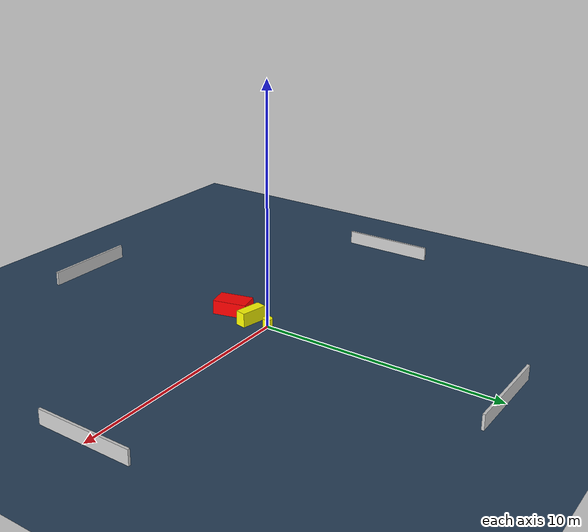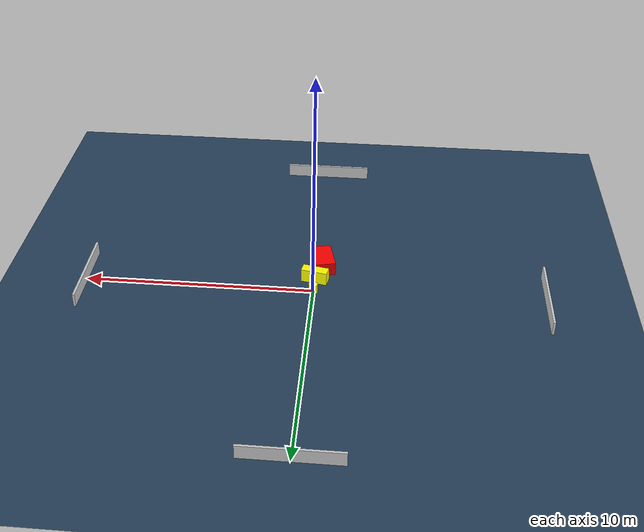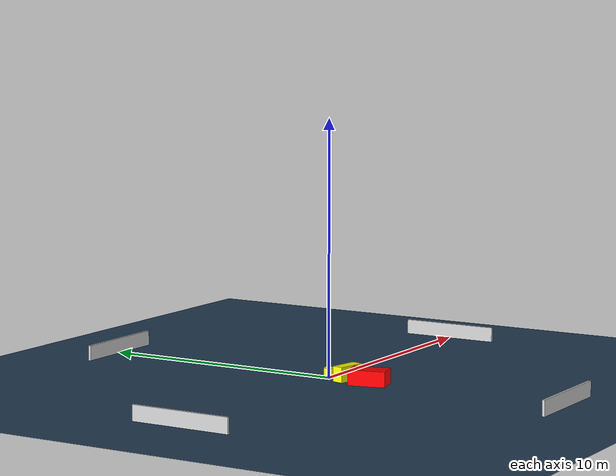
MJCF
<?xml version="1.0" ?>
<mujoco model="generated_environment">
  <option timestep="0.01" integrator="RK4" cone="elliptic"/>
  <default>
    <geom density="1"/>
  </default>
  <asset>
    <texture builtin="gradient" height="3072" name="skybox" rgb1="0.3 0.5 0.7" rgb2="0 0 0" type="skybox" width="512"/>
    <texture builtin="checker" height="300" name="groundplane" rgb1="0.2 0.3 0.4" rgb2="0.1 0.2 0.3" type="2d" width="300"/>
    <material name="groundplane" reflectance="0.2" texrepeat="5 5" texture="groundplane"/>
  </asset>
  <worldbody>
    <light dir="0 0 -1" directional="true" pos="0 0 1.5"/>
    <geom condim="3" friction="0.5 0.005 0.001" material="groundplane" name="floor" pos="0 0 0" size="0 0 0.05" type="plane"/>
    <body name="walls">
      <geom name="wall_1" condim="4" pos="-10.0 0.0 0.3" rgba="0.800000011920929 0.800000011920929 0.800000011920929 1.0" size="0.05 2.0 0.3" type="box"/>
      <geom name="wall_2" condim="4" pos="10.0 0.0 0.3" rgba="0.800000011920929 0.800000011920929 0.800000011920929 1.0" size="0.05 2.0 0.3" type="box"/>
      <geom name="wall_3" condim="4" pos="0.0 -10.0 0.3" rgba="0.800000011920929 0.800000011920929 0.800000011920929 1.0" size="2.0 0.05 0.3" type="box"/>
      <geom name="wall_4" condim="4" pos="0.0 10.0 0.3" rgba="0.800000011920929 0.800000011920929 0.800000011920929 1.0" size="2.0 0.05 0.3" type="box"/>
    </body>
    <body name="robot">
      <joint name="joint_x" type="slide" pos="0 0 0" axis="1 0 0"/>
      <joint name="joint_y" type="slide" pos="0 0 0" axis="0 1 0"/>
      <geom name="robot" type="cylinder" pos="0.0 0.0 0.2" size="0.2 0.2 0.0" mass="5.0" friction="1.0 0.005 0.0001" condim="4" rgba="1.0 1.0 0.0 1.0"/>
    </body>
    <body name="obstacle_1_movable">
      <geom name="obstacle_1_movable" condim="4" pos="-0.01608454307828263 -0.8386327647878628 0.3" euler="0 0 78.38546113333705" friction="0.0 0.005 0.001" rgba="1.0 1.0 0.0 1.0" size="0.22339383396044002 0.575247374545169 0.3" type="box" mass="0.1"/>
      <joint type="free"/>
    </body>
    <body name="obstacle_2_static">
      <geom name="obstacle_2_static" condim="4" pos="-0.3016816410416811 -1.9571014389621606 0.3" euler="0 0 103.54119937381712" friction="0.0 0.005 0.001" rgba="1.0 0.0 0.0 1.0" size="0.720314401318787 0.4341796450159528 0.3" type="box"/>
    </body>
  </worldbody>
  <actuator>
    <motor name="actuator_x" joint="joint_x" gear="1" ctrlrange="-1 1"/>
    <motor name="actuator_y" joint="joint_y" gear="1" ctrlrange="-1 1"/>
  </actuator>
</mujoco>
